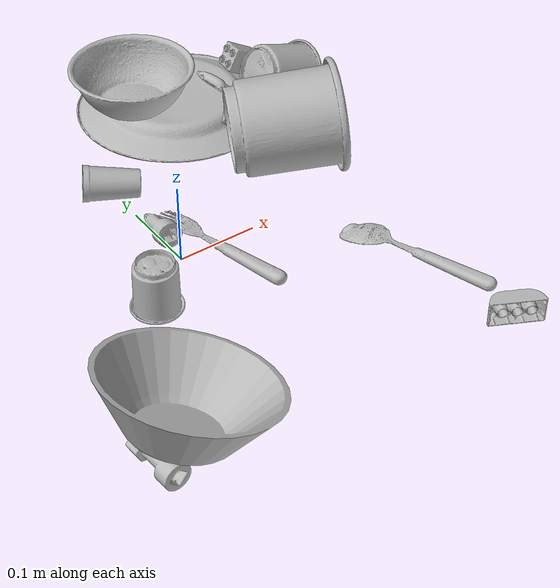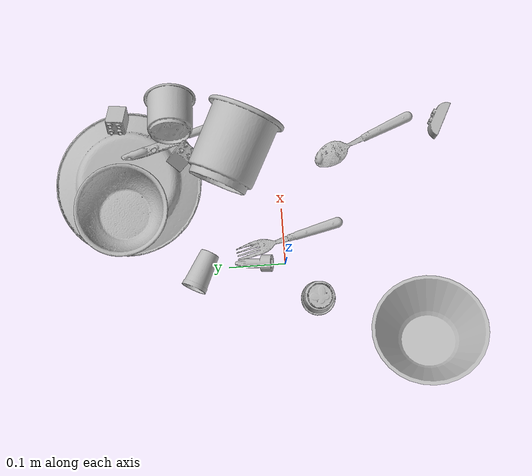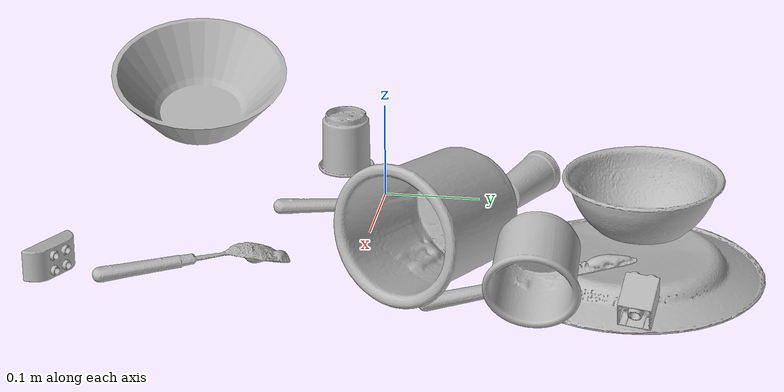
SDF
<sdf version="1.4">
  <world name="default">
    <light name="light1" type="point">
      <pose>0 0 1 0 0 0</pose>
      <diffuse>3 3 3 1</diffuse>
      <specular>3 3 3 1</specular>
    </light>
    <light name="light2" type="point">
      <pose>0 0.5 2 0 0 0</pose>
      <diffuse>1 1 1 1</diffuse>
      <specular>1 1 1 1</specular>
    </light>
    <light name="light3" type="point">
      <pose>0 0.5 2 0 0 0</pose>
      <diffuse>3 3 3 1</diffuse>
      <specular>3 3 3 1</specular>
    </light>
    <scene>
      <ambient>0.7 0.7 0.7</ambient>
    </scene>
    <model name="plate1">
      <link name="link_plate1">
        <collision name="default">
          <geometry>
            <mesh>
              <uri>model://plate/collision_meshes/collision.obj</uri>
              <scale>1.0 1.0 1.0</scale>
            </mesh>
          </geometry>
          <surface>
            <friction>
              <ode>
                <mu>0.5</mu>
                <mu2>0.5</mu2>
              </ode>
            </friction>
          <contact>
        <ode>
            <max_vel>0</max_vel>
            <min_depth>0.0001</min_depth>
            <kp>1e8</kp>
        </ode>
    </contact></surface>
        </collision>
        <visual name="default">
          <geometry>
            <mesh>
              <uri>model://plate/visual_meshes/visual.dae</uri>
              <scale>1.0 1.0 1.0</scale>
            </mesh>
          </geometry>
        </visual>
        <inertial>
          <mass>0.188415065407753</mass>
          <pose>-0.0006044681649655104 0.0002782578521873802 -0.0010561991948634386 0.0022187970116661695 -0.0032254679619122127 0.4526056514331616</pose>
          <inertia>
            <ixx>0.00088140933</ixx>
            <iyy>0.000872979</iyy>
            <izz>0.0017239053</izz>
            <ixy>0</ixy>
            <ixz>0</ixz>
            <iyz>0</iyz>
          </inertia>
        </inertial>
      </link>
      <pose>0.16338670253753662 0.26908019185066223 0.013449661433696747 3.1414798124687224 -0.003169386258319615 1.5915442157052035</pose>
    </model>
    <model name="cup1">
      <link name="link_cup1">
        <collision name="default">
          <geometry>
            <mesh>
              <uri>model://d_cups/collision_meshes/collision.obj</uri>
              <scale>2.0 2.0 2.0</scale>
            </mesh>
          </geometry>
          <surface>
            <friction>
              <ode>
                <mu>0.5</mu>
                <mu2>0.5</mu2>
              </ode>
            </friction>
          <contact>
        <ode>
            <max_vel>0</max_vel>
            <min_depth>0.0001</min_depth>
            <kp>1e8</kp>
        </ode>
    </contact></surface>
        </collision>
        <visual name="default">
          <geometry>
            <mesh>
              <uri>model://d_cups/visual_meshes/visual.dae</uri>
              <scale>2.0 2.0 2.0</scale>
            </mesh>
          </geometry>
        </visual>
        <inertial>
          <mass>0.39843064546585083</mass>
          <pose>0.0016136104241013527 0.0038234808016568422 -0.004533304367214441 0.24012134810188138 -0.24709791903716813 0.5942561701250738</pose>
          <inertia>
            <ixx>0.0013343208</ixx>
            <iyy>0.001330459</iyy>
            <izz>0.001207787</izz>
            <ixy>0</ixy>
            <ixz>0</ixz>
            <iyz>0</iyz>
          </inertia>
        </inertial>
      </link>
      <pose>0.2028908133506775 0.07938164472579956 0.06496076285839081 1.406180441478003 1.0032392538239072 0.9600333324814918</pose>
    </model>
    <model name="silverware1">
      <link name="link_silverware1">
        <collision name="default">
          <geometry>
            <mesh>
              <uri>model://knife/collision_meshes/collision.obj</uri>
              <scale>1.0 1.0 1.0</scale>
            </mesh>
          </geometry>
          <surface>
            <friction>
              <ode>
                <mu>0.5</mu>
                <mu2>0.5</mu2>
              </ode>
            </friction>
          <contact>
        <ode>
            <max_vel>0</max_vel>
            <min_depth>0.0001</min_depth>
            <kp>1e8</kp>
        </ode>
    </contact></surface>
        </collision>
        <visual name="default">
          <geometry>
            <mesh>
              <uri>model://knife/visual_meshes/visual.dae</uri>
              <scale>1.0 1.0 1.0</scale>
            </mesh>
          </geometry>
        </visual>
        <inertial>
          <mass>0.027211036533117294</mass>
          <pose>-0.02378525771200657 0.0015275125624611974 5.062023410573602e-05 0.0730549860308878 0.01724841828598218 -0.007409817457274567</pose>
          <inertia>
            <ixx>7.723595e-07</ixx>
            <iyy>0.000104540384</iyy>
            <izz>0.00010478913</izz>
            <ixy>0</ixy>
            <ixz>0</ixz>
            <iyz>0</iyz>
          </inertia>
        </inertial>
      </link>
      <pose>0.23447354137897491 0.17385683953762054 0.022419318556785583 -2.9780474354268893 -0.14355274506716223 1.8932226878737415</pose>
    </model>
    <model name="silverware2">
      <link name="link_silverware2">
        <collision name="default">
          <geometry>
            <mesh>
              <uri>model://fork/collision_meshes/collision.obj</uri>
              <scale>1.0 1.0 1.0</scale>
            </mesh>
          </geometry>
          <surface>
            <friction>
              <ode>
                <mu>0.5</mu>
                <mu2>0.5</mu2>
              </ode>
            </friction>
          <contact>
        <ode>
            <max_vel>0</max_vel>
            <min_depth>0.0001</min_depth>
            <kp>1e8</kp>
        </ode>
    </contact></surface>
        </collision>
        <visual name="default">
          <geometry>
            <mesh>
              <uri>model://fork/visual_meshes/visual.dae</uri>
              <scale>1.0 1.0 1.0</scale>
            </mesh>
          </geometry>
        </visual>
        <inertial>
          <mass>0.01567319966852665</mass>
          <pose>-0.029570044949650764 0.00046588233090005815 0.0003218860656488687 -0.013551693849150472 -0.010977837004960822 0.014453899894816049</pose>
          <inertia>
            <ixx>5.494343e-07</ixx>
            <iyy>4.0918225e-05</iyy>
            <izz>4.1163967e-05</izz>
            <ixy>0</ixy>
            <ixz>0</ixz>
            <iyz>0</iyz>
          </inertia>
        </inertial>
      </link>
      <pose>0.04537741094827652 -0.010676922276616096 0.007446608040481806 -3.0635068206314093 0.0028357359881295585 1.8128154445004045</pose>
    </model>
    <model name="silverware3">
      <link name="link_silverware3">
        <collision name="default">
          <geometry>
            <mesh>
              <uri>model://spoon/collision_meshes/collision.obj</uri>
              <scale>1.0 1.0 1.0</scale>
            </mesh>
          </geometry>
          <surface>
            <friction>
              <ode>
                <mu>0.5</mu>
                <mu2>0.5</mu2>
              </ode>
            </friction>
          <contact>
        <ode>
            <max_vel>0</max_vel>
            <min_depth>0.0001</min_depth>
            <kp>1e8</kp>
        </ode>
    </contact></surface>
        </collision>
        <visual name="default">
          <geometry>
            <mesh>
              <uri>model://spoon/visual_meshes/visual.dae</uri>
              <scale>1.0 1.0 1.0</scale>
            </mesh>
          </geometry>
        </visual>
        <inertial>
          <mass>0.020675545558333397</mass>
          <pose>-0.0055263228714466095 -0.001603417913429439 -0.0007271659560501575 0.03521671071703309 -0.03906584129558259 0.006150610048623938</pose>
          <inertia>
            <ixx>1.1500075e-06</ixx>
            <iyy>7.866978e-05</iyy>
            <izz>7.923691e-05</izz>
            <ixy>0</ixy>
            <ixz>0</ixz>
            <iyz>0</iyz>
          </inertia>
        </inertial>
      </link>
      <pose>0.2177182137966156 -0.15605610609054565 0.010133667849004269 3.1049434000470577 -0.06197595658657497 1.9759810507464126</pose>
    </model>
    <model name="cup3">
      <link name="link_cup3">
        <collision name="default">
          <geometry>
            <mesh>
              <uri>model://h_cups/collision_meshes/collision.obj</uri>
              <scale>1.0 1.0 1.0</scale>
            </mesh>
          </geometry>
          <surface>
            <friction>
              <ode>
                <mu>0.5</mu>
                <mu2>0.5</mu2>
              </ode>
            </friction>
          <contact>
        <ode>
            <max_vel>0</max_vel>
            <min_depth>0.0001</min_depth>
            <kp>1e8</kp>
        </ode>
    </contact></surface>
        </collision>
        <visual name="default">
          <geometry>
            <mesh>
              <uri>model://h_cups/visual_meshes/visual.dae</uri>
              <scale>1.0 1.0 1.0</scale>
            </mesh>
          </geometry>
        </visual>
        <inertial>
          <mass>0.08491484075784683</mass>
          <pose>-2.702520214370452e-05 0.00023018663341645151 -0.0018405397422611713 -0.02436220805872295 0.06545280106490914 0.1288526015338695</pose>
          <inertia>
            <ixx>0.000109663546</ixx>
            <iyy>0.00010835491</iyy>
            <izz>0.00011500697</izz>
            <ixy>0</ixy>
            <ixz>0</ixz>
            <iyz>0</iyz>
          </inertia>
        </inertial>
      </link>
      <pose>0.2701272964477539 0.18480731546878815 0.0547323003411293 1.9249589612626028 -0.3871305050632637 1.4149873026742685</pose>
    </model>
    <model name="cup4">
      <link name="link_cup4">
        <collision name="default">
          <geometry>
            <mesh>
              <uri>model://cup_small/collision_meshes/collision.obj</uri>
              <scale>1.0 1.0 1.0</scale>
            </mesh>
          </geometry>
          <surface>
            <friction>
              <ode>
                <mu>0.5</mu>
                <mu2>0.5</mu2>
              </ode>
            </friction>
          <contact>
        <ode>
            <max_vel>0</max_vel>
            <min_depth>0.0001</min_depth>
            <kp>1e8</kp>
        </ode>
    </contact></surface>
        </collision>
        <visual name="default">
          <geometry>
            <mesh>
              <uri>model://cup_small/visual_meshes/visual.dae</uri>
              <scale>1.0 1.0 1.0</scale>
            </mesh>
          </geometry>
        </visual>
        <inertial>
          <mass>0.024220753461122513</mass>
          <pose>0.00010482438665349036 -0.00033778438228182495 -0.010742821730673313 -0.011493274197159384 -0.01528013747447056 -0.5058088438882253</pose>
          <inertia>
            <ixx>1.4260815e-05</ixx>
            <iyy>1.433438e-05</iyy>
            <izz>6.4388e-06</izz>
            <ixy>0</ixy>
            <ixz>0</ixz>
            <iyz>0</iyz>
          </inertia>
        </inertial>
      </link>
      <pose>-0.004068933427333832 0.14743965864181519 0.019945411011576653 -1.3320304448470783 1.1875082494793534 1.3026286367898146</pose>
    </model>
    <model name="cup5">
      <link name="link_cup5">
        <collision name="default">
          <geometry>
            <mesh>
              <uri>model://b_cups/collision_meshes/collision.obj</uri>
              <scale>1.0 1.0 1.0</scale>
            </mesh>
          </geometry>
          <surface>
            <friction>
              <ode>
                <mu>0.5</mu>
                <mu2>0.5</mu2>
              </ode>
            </friction>
          <contact>
        <ode>
            <max_vel>0</max_vel>
            <min_depth>0.0001</min_depth>
            <kp>1e8</kp>
        </ode>
    </contact></surface>
        </collision>
        <visual name="default">
          <geometry>
            <mesh>
              <uri>model://b_cups/visual_meshes/visual.dae</uri>
              <scale>1.0 1.0 1.0</scale>
            </mesh>
          </geometry>
        </visual>
        <inertial>
          <mass>0.049698356539011</mass>
          <pose>0.0005182003951631486 0.0018058595014736056 -0.0013381819007918239 0.1135633586286738 0.03872473724046268 -0.3456911343663658</pose>
          <inertia>
            <ixx>3.2531058e-05</ixx>
            <iyy>3.1913434e-05</iyy>
            <izz>2.7374275e-05</izz>
            <ixy>0</ixy>
            <ixz>0</ixz>
            <iyz>0</iyz>
          </inertia>
        </inertial>
      </link>
      <pose>-0.0646241158246994 -0.05324278399348259 0.03215501457452774 3.1415922232797233 -2.288518858333135e-07 1.4250077609591632</pose>
    </model>
    <model name="bowl1">
      <link name="link_bowl1">
        <collision name="default">
          <geometry>
            <mesh>
              <uri>model://bowl/collision_meshes/collision.obj</uri>
              <scale>1.0 1.0 1.0</scale>
            </mesh>
          </geometry>
          <surface>
            <friction>
              <ode>
                <mu>0.5</mu>
                <mu2>0.5</mu2>
              </ode>
            </friction>
          <contact>
        <ode>
            <max_vel>0</max_vel>
            <min_depth>0.0001</min_depth>
            <kp>1e8</kp>
        </ode>
    </contact></surface>
        </collision>
        <visual name="default">
          <geometry>
            <mesh>
              <uri>model://bowl/visual_meshes/visual.dae</uri>
              <scale>1.0 1.0 1.0</scale>
            </mesh>
          </geometry>
        </visual>
        <inertial>
          <mass>0.10713337361812592</mass>
          <pose>0.00020444899564608932 -0.001030207029543817 -0.0008042642148211598 -0.015763984617069283 0.014546905390658569 0.7140476331316008</pose>
          <inertia>
            <ixx>0.0002460938</ixx>
            <iyy>0.00024059511</iyy>
            <izz>0.00041401442</izz>
            <ixy>0</ixy>
            <ixz>0</ixz>
            <iyz>0</iyz>
          </inertia>
        </inertial>
      </link>
      <pose>0.10441301017999649 0.2754923701286316 0.05478804185986519 0.0007412556272716578 -0.005642636434698793 2.9221132058113</pose>
    </model>
    <model name="bowl2">
      <link name="link_bowl2">
        <collision name="default">
          <geometry>
            <mesh>
              <uri>model://bowl_a/collision_meshes/collision.obj</uri>
              <scale>1.0 1.0 1.0</scale>
            </mesh>
          </geometry>
          <surface>
            <friction>
              <ode>
                <mu>0.5</mu>
                <mu2>0.5</mu2>
              </ode>
            </friction>
          <contact>
        <ode>
            <max_vel>0</max_vel>
            <min_depth>0.0001</min_depth>
            <kp>1e8</kp>
        </ode>
    </contact></surface>
        </collision>
        <visual name="default">
          <geometry>
            <mesh>
              <uri>model://bowl_a/visual_meshes/visual.dae</uri>
              <scale>1.0 1.0 1.0</scale>
            </mesh>
          </geometry>
        </visual>
        <inertial>
          <mass>0.5226007103919983</mass>
          <pose>0.00027867400785908103 4.731409717351198e-05 -0.0013765293406322598 -0.0009805372975616423 -0.0010938241101444716 -0.19123543414166835</pose>
          <inertia>
            <ixx>0.0014878683</ixx>
            <iyy>0.0014970028</iyy>
            <izz>0.0026462309</izz>
            <ixy>0</ixy>
            <ixz>0</ixz>
            <iyz>0</iyz>
          </inertia>
        </inertial>
      </link>
      <pose>-0.14378687739372253 -0.23455435037612915 0.04725707322359085 0.11048218247890638 0.3206152412014226 0.5896330348127683</pose>
    </model>
    <model name="toy1">
      <link name="link_toy1">
        <collision name="default">
          <geometry>
            <mesh>
              <uri>model://f_lego_duplo/collision_meshes/collision.obj</uri>
              <scale>1.0 1.0 1.0</scale>
            </mesh>
          </geometry>
          <surface>
            <friction>
              <ode>
                <mu>0.5</mu>
                <mu2>0.5</mu2>
              </ode>
            </friction>
          <contact>
        <ode>
            <max_vel>0</max_vel>
            <min_depth>0.0001</min_depth>
            <kp>1e8</kp>
        </ode>
    </contact></surface>
        </collision>
        <visual name="default">
          <geometry>
            <mesh>
              <uri>model://f_lego_duplo/visual_meshes/visual.dae</uri>
              <scale>1.0 1.0 1.0</scale>
            </mesh>
          </geometry>
        </visual>
        <inertial>
          <mass>0.04674473777413368</mass>
          <pose>2.3694283299846575e-05 0.00013393160770647228 0.0018837876850739121 0.029838743240884653 -0.014424615896258132 -0.6756775311218791</pose>
          <inertia>
            <ixx>9.877422e-06</ixx>
            <iyy>9.965418e-06</iyy>
            <izz>8.57402e-06</izz>
            <ixy>0</ixy>
            <ixz>0</ixz>
            <iyz>0</iyz>
          </inertia>
        </inertial>
      </link>
      <pose>0.2737343907356262 0.2817949056625366 0.0292239747941494 0.15249528006984298 1.075452500484411 -3.1304724467764333</pose>
    </model>
    <model name="toy2">
      <link name="link_toy2">
        <collision name="default">
          <geometry>
            <mesh>
              <uri>model://b_lego_duplo/collision_meshes/collision.obj</uri>
              <scale>1.0 1.0 1.0</scale>
            </mesh>
          </geometry>
          <surface>
            <friction>
              <ode>
                <mu>0.5</mu>
                <mu2>0.5</mu2>
              </ode>
            </friction>
          <contact>
        <ode>
            <max_vel>0</max_vel>
            <min_depth>0.0001</min_depth>
            <kp>1e8</kp>
        </ode>
    </contact></surface>
        </collision>
        <visual name="default">
          <geometry>
            <mesh>
              <uri>model://b_lego_duplo/visual_meshes/visual.dae</uri>
              <scale>1.0 1.0 1.0</scale>
            </mesh>
          </geometry>
        </visual>
        <inertial>
          <mass>0.046308279037475586</mass>
          <pose>-0.00011053026537410915 -9.152292477665469e-06 0.001929429010488093 -0.03749474318211287 -0.02635425030857695 0.451892682452606</pose>
          <inertia>
            <ixx>9.477338e-06</ixx>
            <iyy>9.541048e-06</iyy>
            <izz>8.443999e-06</izz>
            <ixy>0</ixy>
            <ixz>0</ixz>
            <iyz>0</iyz>
          </inertia>
        </inertial>
      </link>
      <pose>0.20120735466480255 0.16872882843017578 0.03612424060702324 0.29905995186516116 0.5410086506663293 -0.560120322021783</pose>
    </model>
    <model name="toy3">
      <link name="link_toy3">
        <collision name="default">
          <geometry>
            <mesh>
              <uri>model://c_toy_airplane/collision_meshes/collision.obj</uri>
              <scale>1.0 1.0 1.0</scale>
            </mesh>
          </geometry>
          <surface>
            <friction>
              <ode>
                <mu>0.5</mu>
                <mu2>0.5</mu2>
              </ode>
            </friction>
          <contact>
        <ode>
            <max_vel>0</max_vel>
            <min_depth>0.0001</min_depth>
            <kp>1e8</kp>
        </ode>
    </contact></surface>
        </collision>
        <visual name="default">
          <geometry>
            <mesh>
              <uri>model://c_toy_airplane/visual_meshes/visual.dae</uri>
              <scale>1.0 1.0 1.0</scale>
            </mesh>
          </geometry>
        </visual>
        <inertial>
          <mass>0.03609102964401245</mass>
          <pose>-0.00023024271649774164 -4.429565194641327e-07 -0.006080531980842352 -0.006192551548155338 -0.01679780015794874 0.7654806130326979</pose>
          <inertia>
            <ixx>1.6572261e-05</ixx>
            <iyy>1.6525488e-05</iyy>
            <izz>3.890839e-06</izz>
            <ixy>0</ixy>
            <ixz>0</ixz>
            <iyz>0</iyz>
          </inertia>
        </inertial>
      </link>
      <pose>-0.1853407621383667 -0.2503274977207184 0.014532860368490219 -1.9051134765998319 1.4422081372642326 -0.25798811402976846</pose>
    </model>
    <model name="toy4">
      <link name="link_toy4">
        <collision name="default">
          <geometry>
            <mesh>
              <uri>model://d_toy_airplane/collision_meshes/collision.obj</uri>
              <scale>1.0 1.0 1.0</scale>
            </mesh>
          </geometry>
          <surface>
            <friction>
              <ode>
                <mu>0.5</mu>
                <mu2>0.5</mu2>
              </ode>
            </friction>
          <contact>
        <ode>
            <max_vel>0</max_vel>
            <min_depth>0.0001</min_depth>
            <kp>1e8</kp>
        </ode>
    </contact></surface>
        </collision>
        <visual name="default">
          <geometry>
            <mesh>
              <uri>model://d_toy_airplane/visual_meshes/visual.dae</uri>
              <scale>1.0 1.0 1.0</scale>
            </mesh>
          </geometry>
        </visual>
        <inertial>
          <mass>0.017463792115449905</mass>
          <pose>9.410289203515276e-05 -5.80932101001963e-05 -0.011728095822036266 0.00026611357398368453 0.004679028940218743 0.5192826772494831</pose>
          <inertia>
            <ixx>5.2353053e-06</ixx>
            <iyy>5.239254e-06</iyy>
            <izz>1.5805728e-06</izz>
            <ixy>0</ixy>
            <ixz>0</ixz>
            <iyz>0</iyz>
          </inertia>
        </inertial>
      </link>
      <pose>0.004424647893756628 0.055895715951919556 0.011234664358198643 1.7944115385228199 -0.1970728636896937 3.007167823158465</pose>
    </model>
    <model name="toy5">
      <link name="link_toy5">
        <collision name="default">
          <geometry>
            <mesh>
              <uri>model://a_lego_duplo/collision_meshes/collision.obj</uri>
              <scale>1.0 1.0 1.0</scale>
            </mesh>
          </geometry>
          <surface>
            <friction>
              <ode>
                <mu>0.5</mu>
                <mu2>0.5</mu2>
              </ode>
            </friction>
          <contact>
        <ode>
            <max_vel>0</max_vel>
            <min_depth>0.0001</min_depth>
            <kp>1e8</kp>
        </ode>
    </contact></surface>
        </collision>
        <visual name="default">
          <geometry>
            <mesh>
              <uri>model://a_lego_duplo/visual_meshes/visual.dae</uri>
              <scale>1.0 1.0 1.0</scale>
            </mesh>
          </geometry>
        </visual>
        <inertial>
          <mass>0.016317613422870636</mass>
          <pose>-0.00011337783507769927 0.00018517576972953975 0.00036926058237440884 -0.01411698761390393 -0.0001256633936569927 6.142942133676727e-05</pose>
          <inertia>
            <ixx>2.0920475e-06</ixx>
            <iyy>4.6866458e-06</iyy>
            <izz>5.8054516e-06</izz>
            <ixy>0</ixy>
            <ixz>0</ixz>
            <iyz>0</iyz>
          </inertia>
        </inertial>
      </link>
      <pose>0.2409335970878601 -0.2899644672870636 0.016109004616737366 1.5707958773893425 -3.7713082321058966e-08 2.666600503665521</pose>
    </model>
  <physics type="ode">
      <max_contacts>50</max_contacts>
      <ode>
        <solver>
          <type>quick</type>
          <iters>75</iters>
        </solver>
        <constraints>
          <contact_max_correcting_vel>0</contact_max_correcting_vel>
          <contact_surface_layer>0</contact_surface_layer>
        </constraints>
      </ode>
    </physics></world>
</sdf>
